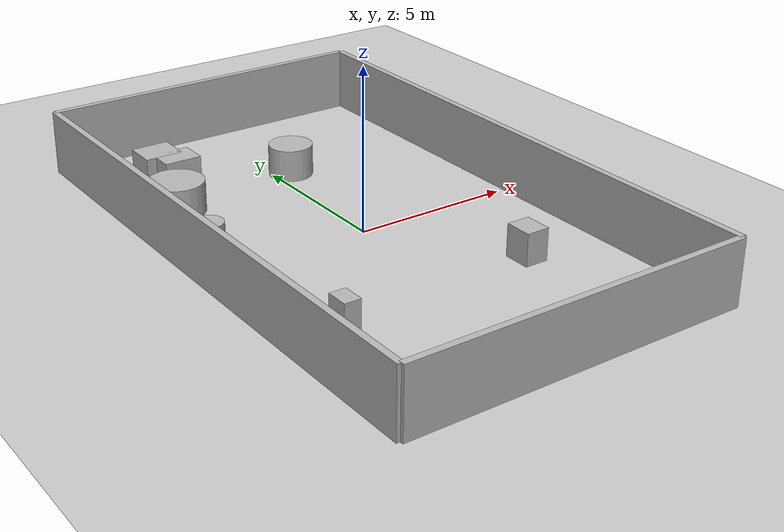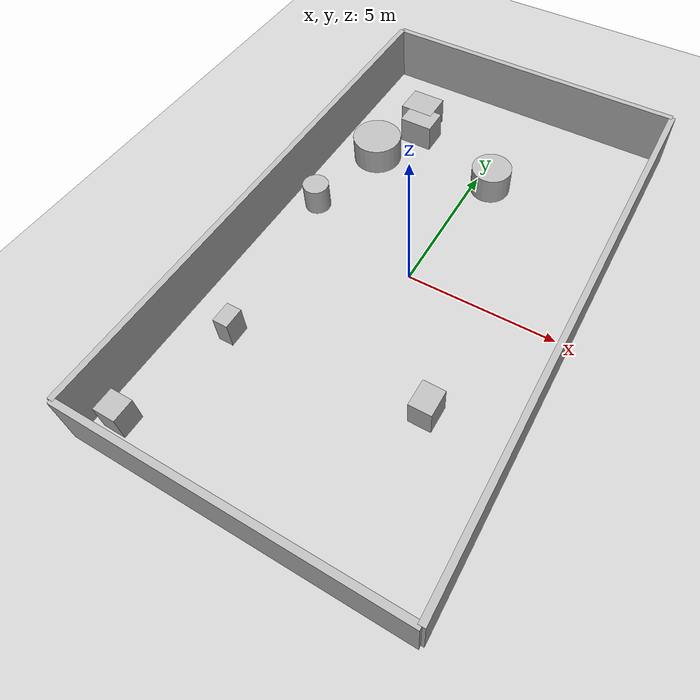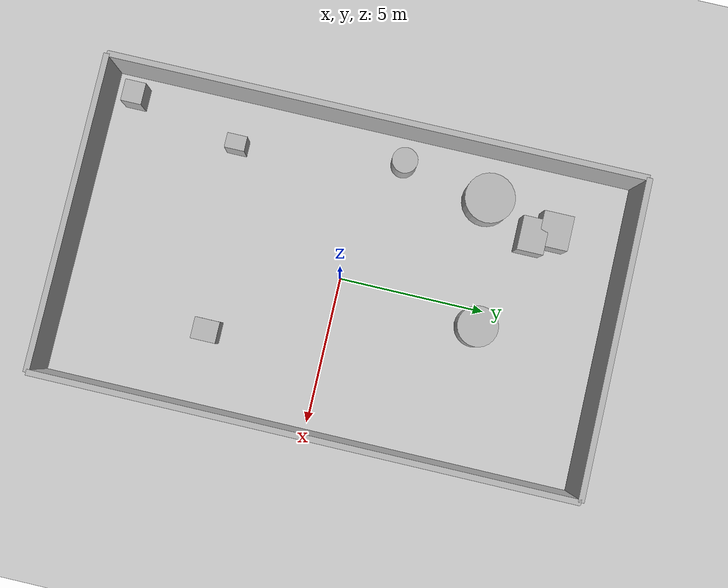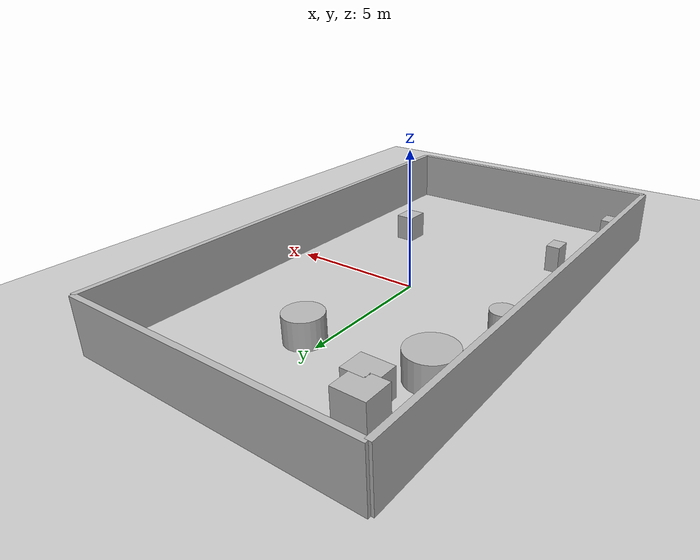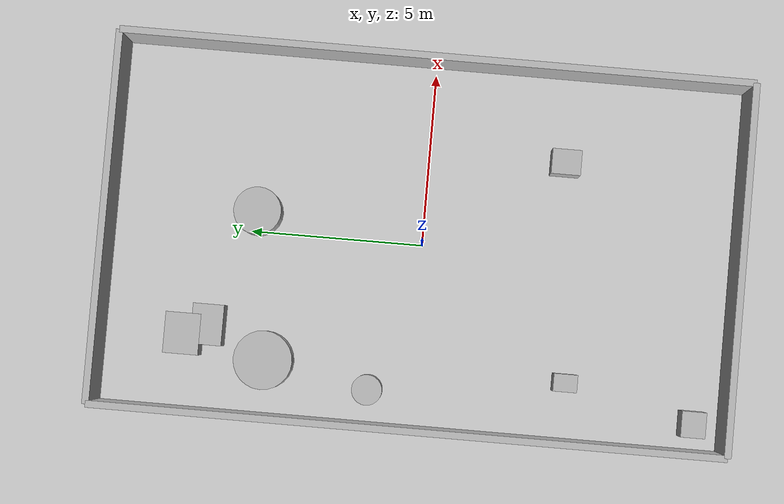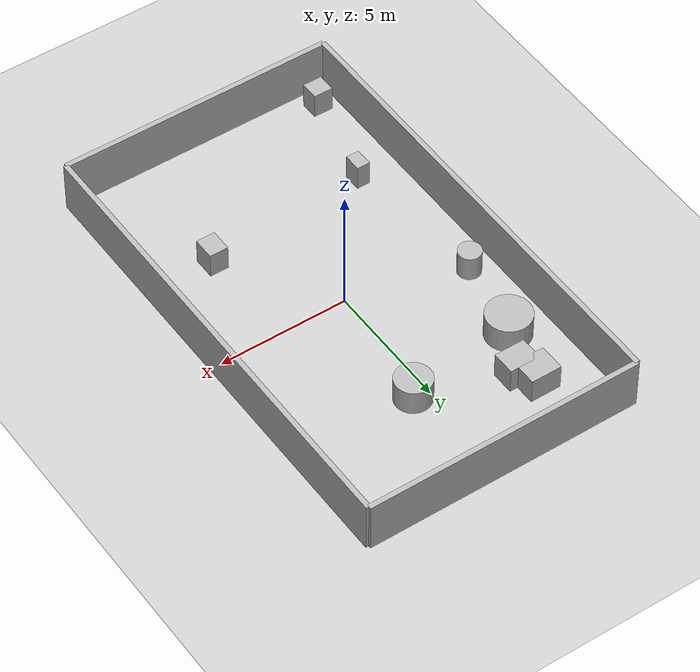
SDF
<?xml version="1.0"?>
<sdf version="1.6">
  <world name="env_46">

    <include><uri>model://ground_plane</uri></include>
    <include><uri>model://sun</uri></include>

    <!-- WALLS -->
    <model name="wall_north"><static>true</static><pose>0 9.091100977253774 1 0 0 0</pose>
      <link name="link"><collision name="collision">
        <geometry><box><size>10.678352294010379 0.2 2</size></box></geometry>
      </collision><visual name="visual">
        <geometry><box><size>10.678352294010379 0.2 2</size></box></geometry>
      </visual></link>
    </model>

    <model name="wall_south"><static>true</static><pose>0 -9.091100977253774 1 0 0 0</pose>
      <link name="link"><collision name="collision">
        <geometry><box><size>10.678352294010379 0.2 2</size></box></geometry>
      </collision><visual name="visual">
        <geometry><box><size>10.678352294010379 0.2 2</size></box></geometry>
      </visual></link>
    </model>

    <model name="wall_east"><static>true</static><pose>5.3391761470051895 0 1 0 0 1.57</pose>
      <link name="link"><collision name="collision">
        <geometry><box><size>18.182201954507548 0.2 2</size></box></geometry>
      </collision><visual name="visual">
        <geometry><box><size>18.182201954507548 0.2 2</size></box></geometry>
      </visual></link>
    </model>

    <model name="wall_west"><static>true</static><pose>-5.3391761470051895 0 1 0 0 1.57</pose>
      <link name="link"><collision name="collision">
        <geometry><box><size>18.182201954507548 0.2 2</size></box></geometry>
      </collision><visual name="visual">
        <geometry><box><size>18.182201954507548 0.2 2</size></box></geometry>
      </visual></link>
    </model>

    <!-- SENSOR -->

    <model name="lidar_sensor">
      <static>true</static>
      <pose>1.2981453014094964 -8.537894501791081 0.4 0 0 0</pose>
      <link name="link">
        <sensor name="lidar" type="ray">
          <pose>0 0 0 0 0 0</pose>
          <visualize>true</visualize>
          <always_on>true</always_on>
          <update_rate>10</update_rate>
          <ray>
            <scan><horizontal>
              <samples>180</samples>
              <resolution>1</resolution>
              <min_angle>-3.14159</min_angle>
              <max_angle>3.14159</max_angle>
            </horizontal></scan>
            <range><min>0.15</min><max>20.0</max><resolution>0.01</resolution></range>
          </ray>
          <plugin name="lidar_plugin" filename="liblidar_plugin.so"/>
        </sensor>
      </link>
    </model>

    <!-- OBSTACLES -->

    <model name="obstacle_0">
      <static>true</static>
      <pose>-4.3033827908077615 1.2367671540563752 0.5 0 0 0</pose>
      <link name="link">
        <collision name="collision">
          <geometry><cylinder><radius>0.44</radius><length>1.0</length></cylinder></geometry>
        </collision>
        <visual name="visual">
          <geometry><cylinder><radius>0.44</radius><length>1.0</length></cylinder></geometry>
        </visual>
      </link>
    </model>

    <model name="obstacle_1">
      <static>true</static>
      <pose>-3.1275670112713803 6.669629686353089 0.5 0 0 0</pose>
      <link name="link">
        <collision name="collision">
          <geometry><box><size>1.19 1.02 1.0</size></box></geometry>
        </collision>
        <visual name="visual">
          <geometry><box><size>1.19 1.02 1.0</size></box></geometry>
        </visual>
      </link>
    </model>

    <model name="obstacle_2">
      <static>true</static>
      <pose>-4.503373151788299 -8.201465838094977 0.5 0 0 0</pose>
      <link name="link">
        <collision name="collision">
          <geometry><box><size>0.75 0.71 1.0</size></box></geometry>
        </collision>
        <visual name="visual">
          <geometry><box><size>0.75 0.71 1.0</size></box></geometry>
        </visual>
      </link>
    </model>

    <model name="obstacle_3">
      <static>true</static>
      <pose>0.573977509954708 4.817176912968707 0.5 0 0 0</pose>
      <link name="link">
        <collision name="collision">
          <geometry><cylinder><radius>0.69</radius><length>1.0</length></cylinder></geometry>
        </collision>
        <visual name="visual">
          <geometry><cylinder><radius>0.69</radius><length>1.0</length></cylinder></geometry>
        </visual>
      </link>
    </model>

    <model name="obstacle_4">
      <static>true</static>
      <pose>-3.6221252600179357 -4.43610285743633 0.5 0 0 0</pose>
      <link name="link">
        <collision name="collision">
          <geometry><box><size>0.51 0.69 1.0</size></box></geometry>
        </collision>
        <visual name="visual">
          <geometry><box><size>0.51 0.69 1.0</size></box></geometry>
        </visual>
      </link>
    </model>

    <model name="obstacle_5">
      <static>true</static>
      <pose>2.736202991115711 -3.955877748768512 0.5 0 0 0</pose>
      <link name="link">
        <collision name="collision">
          <geometry><box><size>0.73 0.85 1.0</size></box></geometry>
        </collision>
        <visual name="visual">
          <geometry><box><size>0.73 0.85 1.0</size></box></geometry>
        </visual>
      </link>
    </model>

    <model name="obstacle_6">
      <static>true</static>
      <pose>-3.703854376308295 4.290249062096986 0.5 0 0 0</pose>
      <link name="link">
        <collision name="collision">
          <geometry><cylinder><radius>0.85</radius><length>1.0</length></cylinder></geometry>
        </collision>
        <visual name="visual">
          <geometry><cylinder><radius>0.85</radius><length>1.0</length></cylinder></geometry>
        </visual>
      </link>
    </model>

    <model name="obstacle_7">
      <static>true</static>
      <pose>-2.814661473654066 5.969248024769488 0.5 0 0 0</pose>
      <link name="link">
        <collision name="collision">
          <geometry><box><size>1.18 0.9 1.0</size></box></geometry>
        </collision>
        <visual name="visual">
          <geometry><box><size>1.18 0.9 1.0</size></box></geometry>
        </visual>
      </link>
    </model>

  </world>
</sdf>
